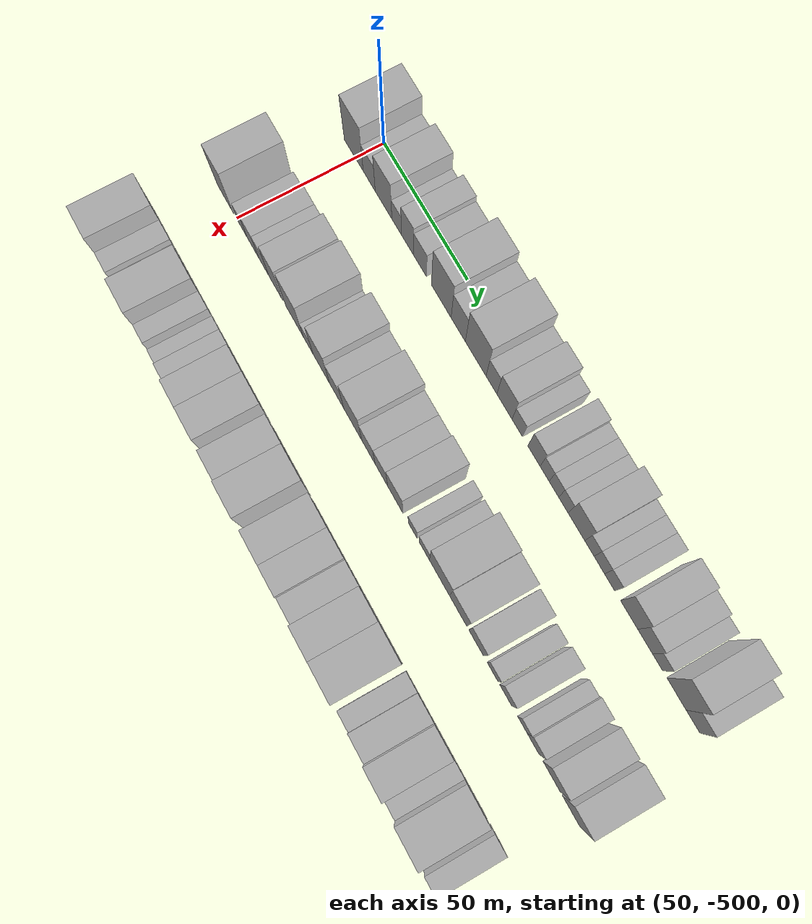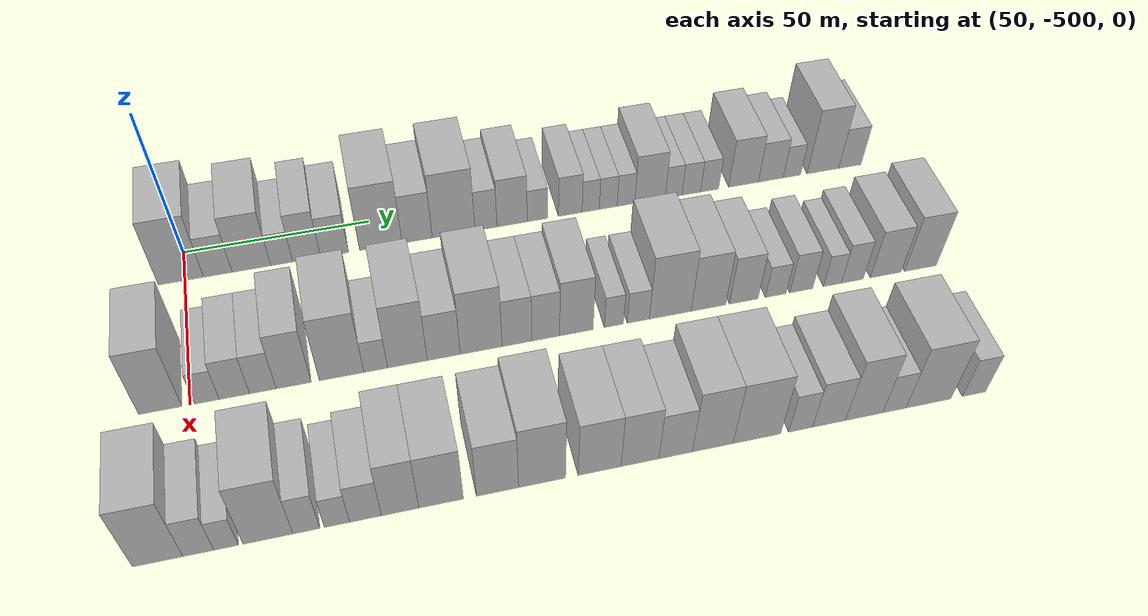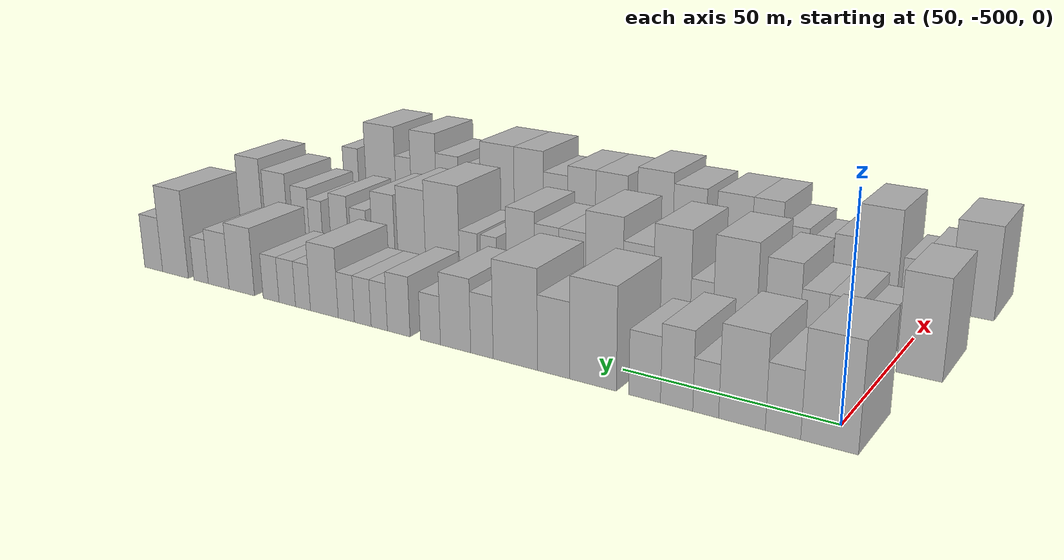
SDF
<sdf version="1.6">
 <world name="default">
  <model name="building_13">
   <static>1</static>
   <pose>50.0000 -500.9889 0 0.000000 0.000000 0.000000</pose>
   <link name="link">
    <pose>0 0 12.00 0 0 0</pose>
    <collision name="collision"><geometry><box><size>20.0000 11.7233 24.0000</size></box></geometry></collision>
    <visual name="visual">
     <cast_shadows>0</cast_shadows>
     <geometry><box><size>20.0000 11.7233 24.0000</size></box></geometry>
     <material>
      <script>
       <uri>model://HANNAS_wall/materials/scripts</uri>
       <uri>model://HANNAS_wall/materials/textures</uri>
       <name>vrc/HANNAS_wall</name>
      </script>
     </material>
    </visual>
   </link>
  </model>
  <model name="building_14">
   <static>1</static>
   <pose>50.0000 -491.3945 0 0.000000 0.000000 0.000000</pose>
   <link name="link">
    <pose>0 0 7.50 0 0 0</pose>
    <collision name="collision"><geometry><box><size>20.0000 7.4656 15.0000</size></box></geometry></collision>
    <visual name="visual">
     <cast_shadows>0</cast_shadows>
     <geometry><box><size>20.0000 7.4656 15.0000</size></box></geometry>
     <material>
      <script>
       <uri>model://HANNAS_wall/materials/scripts</uri>
       <uri>model://HANNAS_wall/materials/textures</uri>
       <name>vrc/HANNAS_wall</name>
      </script>
     </material>
    </visual>
   </link>
  </model>
  <model name="building_15">
   <static>1</static>
   <pose>50.0000 -482.5791 0 0.000000 0.000000 0.000000</pose>
   <link name="link">
    <pose>0 0 10.50 0 0 0</pose>
    <collision name="collision"><geometry><box><size>20.0000 10.1651 21.0000</size></box></geometry></collision>
    <visual name="visual">
     <cast_shadows>0</cast_shadows>
     <geometry><box><size>20.0000 10.1651 21.0000</size></box></geometry>
     <material>
      <script>
       <uri>model://HANNAS_wall/materials/scripts</uri>
       <uri>model://HANNAS_wall/materials/textures</uri>
       <name>vrc/HANNAS_wall</name>
      </script>
     </material>
    </visual>
   </link>
  </model>
  <model name="building_16">
   <static>1</static>
   <pose>50.0000 -474.5978 0 0.000000 0.000000 0.000000</pose>
   <link name="link">
    <pose>0 0 6.00 0 0 0</pose>
    <collision name="collision"><geometry><box><size>20.0000 5.7976 12.0000</size></box></geometry></collision>
    <visual name="visual">
     <cast_shadows>0</cast_shadows>
     <geometry><box><size>20.0000 5.7976 12.0000</size></box></geometry>
     <material>
      <script>
       <uri>model://HANNAS_wall/materials/scripts</uri>
       <uri>model://HANNAS_wall/materials/textures</uri>
       <name>vrc/HANNAS_wall</name>
      </script>
     </material>
    </visual>
   </link>
  </model>
  <model name="building_17">
   <static>1</static>
   <pose>50.0000 -467.9773 0 0.000000 0.000000 0.000000</pose>
   <link name="link">
    <pose>0 0 9.00 0 0 0</pose>
    <collision name="collision"><geometry><box><size>20.0000 7.4434 18.0000</size></box></geometry></collision>
    <visual name="visual">
     <cast_shadows>0</cast_shadows>
     <geometry><box><size>20.0000 7.4434 18.0000</size></box></geometry>
     <material>
      <script>
       <uri>model://HANNAS_wall/materials/scripts</uri>
       <uri>model://HANNAS_wall/materials/textures</uri>
       <name>vrc/HANNAS_wall</name>
      </script>
     </material>
    </visual>
   </link>
  </model>
  <model name="building_18">
   <static>1</static>
   <pose>50.0000 -460.5106 0 0.000000 0.000000 0.000000</pose>
   <link name="link">
    <pose>0 0 7.50 0 0 0</pose>
    <collision name="collision"><geometry><box><size>20.0000 7.4900 15.0000</size></box></geometry></collision>
    <visual name="visual">
     <cast_shadows>0</cast_shadows>
     <geometry><box><size>20.0000 7.4900 15.0000</size></box></geometry>
     <material>
      <script>
       <uri>model://HANNAS_wall/materials/scripts</uri>
       <uri>model://HANNAS_wall/materials/textures</uri>
       <name>vrc/HANNAS_wall</name>
      </script>
     </material>
    </visual>
   </link>
  </model>
  <model name="building_19">
   <static>1</static>
   <pose>50.0000 -448.0010 0 0.000000 0.000000 0.000000</pose>
   <link name="link">
    <pose>0 0 12.00 0 0 0</pose>
    <collision name="collision"><geometry><box><size>20.0000 11.5291 24.0000</size></box></geometry></collision>
    <visual name="visual">
     <cast_shadows>0</cast_shadows>
     <geometry><box><size>20.0000 11.5291 24.0000</size></box></geometry>
     <material>
      <script>
       <uri>model://HANNAS_wall/materials/scripts</uri>
       <uri>model://HANNAS_wall/materials/textures</uri>
       <name>vrc/HANNAS_wall</name>
      </script>
     </material>
    </visual>
   </link>
  </model>
  <model name="building_20">
   <static>1</static>
   <pose>50.0000 -438.1057 0 0.000000 0.000000 0.000000</pose>
   <link name="link">
    <pose>0 0 9.00 0 0 0</pose>
    <collision name="collision"><geometry><box><size>20.0000 8.2616 18.0000</size></box></geometry></collision>
    <visual name="visual">
     <cast_shadows>0</cast_shadows>
     <geometry><box><size>20.0000 8.2616 18.0000</size></box></geometry>
     <material>
      <script>
       <uri>model://HANNAS_wall/materials/scripts</uri>
       <uri>model://HANNAS_wall/materials/textures</uri>
       <name>vrc/HANNAS_wall</name>
      </script>
     </material>
    </visual>
   </link>
  </model>
  <model name="building_21">
   <static>1</static>
   <pose>50.0000 -428.0708 0 0.000000 0.000000 0.000000</pose>
   <link name="link">
    <pose>0 0 12.00 0 0 0</pose>
    <collision name="collision"><geometry><box><size>20.0000 11.8082 24.0000</size></box></geometry></collision>
    <visual name="visual">
     <cast_shadows>0</cast_shadows>
     <geometry><box><size>20.0000 11.8082 24.0000</size></box></geometry>
     <material>
      <script>
       <uri>model://HANNAS_wall/materials/scripts</uri>
       <uri>model://HANNAS_wall/materials/textures</uri>
       <name>vrc/HANNAS_wall</name>
      </script>
     </material>
    </visual>
   </link>
  </model>
  <model name="building_22">
   <static>1</static>
   <pose>50.0000 -419.0965 0 0.000000 0.000000 0.000000</pose>
   <link name="link">
    <pose>0 0 7.50 0 0 0</pose>
    <collision name="collision"><geometry><box><size>20.0000 6.1403 15.0000</size></box></geometry></collision>
    <visual name="visual">
     <cast_shadows>0</cast_shadows>
     <geometry><box><size>20.0000 6.1403 15.0000</size></box></geometry>
     <material>
      <script>
       <uri>model://HANNAS_wall/materials/scripts</uri>
       <uri>model://HANNAS_wall/materials/textures</uri>
       <name>vrc/HANNAS_wall</name>
      </script>
     </material>
    </visual>
   </link>
  </model>
  <model name="building_23">
   <static>1</static>
   <pose>50.0000 -411.7634 0 0.000000 0.000000 0.000000</pose>
   <link name="link">
    <pose>0 0 9.00 0 0 0</pose>
    <collision name="collision"><geometry><box><size>20.0000 8.5258 18.0000</size></box></geometry></collision>
    <visual name="visual">
     <cast_shadows>0</cast_shadows>
     <geometry><box><size>20.0000 8.5258 18.0000</size></box></geometry>
     <material>
      <script>
       <uri>model://HANNAS_wall/materials/scripts</uri>
       <uri>model://HANNAS_wall/materials/textures</uri>
       <name>vrc/HANNAS_wall</name>
      </script>
     </material>
    </visual>
   </link>
  </model>
  <model name="building_24">
   <static>1</static>
   <pose>50.0000 -404.6001 0 0.000000 0.000000 0.000000</pose>
   <link name="link">
    <pose>0 0 6.00 0 0 0</pose>
    <collision name="collision"><geometry><box><size>20.0000 5.8009 12.0000</size></box></geometry></collision>
    <visual name="visual">
     <cast_shadows>0</cast_shadows>
     <geometry><box><size>20.0000 5.8009 12.0000</size></box></geometry>
     <material>
      <script>
       <uri>model://HANNAS_wall/materials/scripts</uri>
       <uri>model://HANNAS_wall/materials/textures</uri>
       <name>vrc/HANNAS_wall</name>
      </script>
     </material>
    </visual>
   </link>
  </model>
  <model name="building_25">
   <static>1</static>
   <pose>50.0000 -395.3287 0 0.000000 0.000000 0.000000</pose>
   <link name="link">
    <pose>0 0 7.50 0 0 0</pose>
    <collision name="collision"><geometry><box><size>20.0000 6.7418 15.0000</size></box></geometry></collision>
    <visual name="visual">
     <cast_shadows>0</cast_shadows>
     <geometry><box><size>20.0000 6.7418 15.0000</size></box></geometry>
     <material>
      <script>
       <uri>model://HANNAS_wall/materials/scripts</uri>
       <uri>model://HANNAS_wall/materials/textures</uri>
       <name>vrc/HANNAS_wall</name>
      </script>
     </material>
    </visual>
   </link>
  </model>
  <model name="building_26">
   <static>1</static>
   <pose>50.0000 -389.5007 0 0.000000 0.000000 0.000000</pose>
   <link name="link">
    <pose>0 0 6.00 0 0 0</pose>
    <collision name="collision"><geometry><box><size>20.0000 4.9143 12.0000</size></box></geometry></collision>
    <visual name="visual">
     <cast_shadows>0</cast_shadows>
     <geometry><box><size>20.0000 4.9143 12.0000</size></box></geometry>
     <material>
      <script>
       <uri>model://HANNAS_wall/materials/scripts</uri>
       <uri>model://HANNAS_wall/materials/textures</uri>
       <name>vrc/HANNAS_wall</name>
      </script>
     </material>
    </visual>
   </link>
  </model>
  <model name="building_27">
   <static>1</static>
   <pose>50.0000 -384.4664 0 0.000000 0.000000 0.000000</pose>
   <link name="link">
    <pose>0 0 6.00 0 0 0</pose>
    <collision name="collision"><geometry><box><size>20.0000 5.1542 12.0000</size></box></geometry></collision>
    <visual name="visual">
     <cast_shadows>0</cast_shadows>
     <geometry><box><size>20.0000 5.1542 12.0000</size></box></geometry>
     <material>
      <script>
       <uri>model://HANNAS_wall/materials/scripts</uri>
       <uri>model://HANNAS_wall/materials/textures</uri>
       <name>vrc/HANNAS_wall</name>
      </script>
     </material>
    </visual>
   </link>
  </model>
  <model name="building_28">
   <static>1</static>
   <pose>50.0000 -379.3581 0 0.000000 0.000000 0.000000</pose>
   <link name="link">
    <pose>0 0 6.00 0 0 0</pose>
    <collision name="collision"><geometry><box><size>20.0000 5.0624 12.0000</size></box></geometry></collision>
    <visual name="visual">
     <cast_shadows>0</cast_shadows>
     <geometry><box><size>20.0000 5.0624 12.0000</size></box></geometry>
     <material>
      <script>
       <uri>model://HANNAS_wall/materials/scripts</uri>
       <uri>model://HANNAS_wall/materials/textures</uri>
       <name>vrc/HANNAS_wall</name>
      </script>
     </material>
    </visual>
   </link>
  </model>
  <model name="building_29">
   <static>1</static>
   <pose>50.0000 -372.3930 0 0.000000 0.000000 0.000000</pose>
   <link name="link">
    <pose>0 0 9.00 0 0 0</pose>
    <collision name="collision"><geometry><box><size>20.0000 8.8679 18.0000</size></box></geometry></collision>
    <visual name="visual">
     <cast_shadows>0</cast_shadows>
     <geometry><box><size>20.0000 8.8679 18.0000</size></box></geometry>
     <material>
      <script>
       <uri>model://HANNAS_wall/materials/scripts</uri>
       <uri>model://HANNAS_wall/materials/textures</uri>
       <name>vrc/HANNAS_wall</name>
      </script>
     </material>
    </visual>
   </link>
  </model>
  <model name="building_30">
   <static>1</static>
   <pose>50.0000 -365.5068 0 0.000000 0.000000 0.000000</pose>
   <link name="link">
    <pose>0 0 6.00 0 0 0</pose>
    <collision name="collision"><geometry><box><size>20.0000 4.9045 12.0000</size></box></geometry></collision>
    <visual name="visual">
     <cast_shadows>0</cast_shadows>
     <geometry><box><size>20.0000 4.9045 12.0000</size></box></geometry>
     <material>
      <script>
       <uri>model://HANNAS_wall/materials/scripts</uri>
       <uri>model://HANNAS_wall/materials/textures</uri>
       <name>vrc/HANNAS_wall</name>
      </script>
     </material>
    </visual>
   </link>
  </model>
  <model name="building_31">
   <static>1</static>
   <pose>50.0000 -360.3076 0 0.000000 0.000000 0.000000</pose>
   <link name="link">
    <pose>0 0 6.00 0 0 0</pose>
    <collision name="collision"><geometry><box><size>20.0000 5.4939 12.0000</size></box></geometry></collision>
    <visual name="visual">
     <cast_shadows>0</cast_shadows>
     <geometry><box><size>20.0000 5.4939 12.0000</size></box></geometry>
     <material>
      <script>
       <uri>model://HANNAS_wall/materials/scripts</uri>
       <uri>model://HANNAS_wall/materials/textures</uri>
       <name>vrc/HANNAS_wall</name>
      </script>
     </material>
    </visual>
   </link>
  </model>
  <model name="building_32">
   <static>1</static>
   <pose>50.0000 -354.8880 0 0.000000 0.000000 0.000000</pose>
   <link name="link">
    <pose>0 0 6.00 0 0 0</pose>
    <collision name="collision"><geometry><box><size>20.0000 5.3453 12.0000</size></box></geometry></collision>
    <visual name="visual">
     <cast_shadows>0</cast_shadows>
     <geometry><box><size>20.0000 5.3453 12.0000</size></box></geometry>
     <material>
      <script>
       <uri>model://HANNAS_wall/materials/scripts</uri>
       <uri>model://HANNAS_wall/materials/textures</uri>
       <name>vrc/HANNAS_wall</name>
      </script>
     </material>
    </visual>
   </link>
  </model>
  <model name="building_33">
   <static>1</static>
   <pose>50.0000 -344.8175 0 0.000000 0.000000 0.000000</pose>
   <link name="link">
    <pose>0 0 9.00 0 0 0</pose>
    <collision name="collision"><geometry><box><size>20.0000 8.7959 18.0000</size></box></geometry></collision>
    <visual name="visual">
     <cast_shadows>0</cast_shadows>
     <geometry><box><size>20.0000 8.7959 18.0000</size></box></geometry>
     <material>
      <script>
       <uri>model://HANNAS_wall/materials/scripts</uri>
       <uri>model://HANNAS_wall/materials/textures</uri>
       <name>vrc/HANNAS_wall</name>
      </script>
     </material>
    </visual>
   </link>
  </model>
  <model name="building_34">
   <static>1</static>
   <pose>50.0000 -336.6753 0 0.000000 0.000000 0.000000</pose>
   <link name="link">
    <pose>0 0 7.50 0 0 0</pose>
    <collision name="collision"><geometry><box><size>20.0000 7.4885 15.0000</size></box></geometry></collision>
    <visual name="visual">
     <cast_shadows>0</cast_shadows>
     <geometry><box><size>20.0000 7.4885 15.0000</size></box></geometry>
     <material>
      <script>
       <uri>model://HANNAS_wall/materials/scripts</uri>
       <uri>model://HANNAS_wall/materials/textures</uri>
       <name>vrc/HANNAS_wall</name>
      </script>
     </material>
    </visual>
   </link>
  </model>
  <model name="building_35">
   <static>1</static>
   <pose>50.0000 -330.3039 0 0.000000 0.000000 0.000000</pose>
   <link name="link">
    <pose>0 0 6.00 0 0 0</pose>
    <collision name="collision"><geometry><box><size>20.0000 5.2542 12.0000</size></box></geometry></collision>
    <visual name="visual">
     <cast_shadows>0</cast_shadows>
     <geometry><box><size>20.0000 5.2542 12.0000</size></box></geometry>
     <material>
      <script>
       <uri>model://HANNAS_wall/materials/scripts</uri>
       <uri>model://HANNAS_wall/materials/textures</uri>
       <name>vrc/HANNAS_wall</name>
      </script>
     </material>
    </visual>
   </link>
  </model>
  <model name="building_36">
   <static>1</static>
   <pose>50.0000 -320.8664 0 0.000000 0.000000 0.000000</pose>
   <link name="link">
    <pose>0 0 12.00 0 0 0</pose>
    <collision name="collision"><geometry><box><size>20.0000 9.6209 24.0000</size></box></geometry></collision>
    <visual name="visual">
     <cast_shadows>0</cast_shadows>
     <geometry><box><size>20.0000 9.6209 24.0000</size></box></geometry>
     <material>
      <script>
       <uri>model://HANNAS_wall/materials/scripts</uri>
       <uri>model://HANNAS_wall/materials/textures</uri>
       <name>vrc/HANNAS_wall</name>
      </script>
     </material>
    </visual>
   </link>
  </model>
  <model name="building_37">
   <static>1</static>
   <pose>50.0000 -312.6414 0 0.000000 0.000000 0.000000</pose>
   <link name="link">
    <pose>0 0 7.50 0 0 0</pose>
    <collision name="collision"><geometry><box><size>20.0000 6.8291 15.0000</size></box></geometry></collision>
    <visual name="visual">
     <cast_shadows>0</cast_shadows>
     <geometry><box><size>20.0000 6.8291 15.0000</size></box></geometry>
     <material>
      <script>
       <uri>model://HANNAS_wall/materials/scripts</uri>
       <uri>model://HANNAS_wall/materials/textures</uri>
       <name>vrc/HANNAS_wall</name>
      </script>
     </material>
    </visual>
   </link>
  </model>
  <model name="building_151">
   <static>1</static>
   <pose>90.0000 -506.9446 0 0.000000 0.000000 0.000000</pose>
   <link name="link">
    <pose>0 0 12.00 0 0 0</pose>
    <collision name="collision"><geometry><box><size>20.0000 10.2397 24.0000</size></box></geometry></collision>
    <visual name="visual">
     <cast_shadows>0</cast_shadows>
     <geometry><box><size>20.0000 10.2397 24.0000</size></box></geometry>
     <material>
      <script>
       <uri>model://HANNAS_wall/materials/scripts</uri>
       <uri>model://HANNAS_wall/materials/textures</uri>
       <name>vrc/HANNAS_wall</name>
      </script>
     </material>
    </visual>
   </link>
  </model>
  <model name="building_152">
   <static>1</static>
   <pose>90.0000 -495.8868 0 0.000000 0.000000 0.000000</pose>
   <link name="link">
    <pose>0 0 6.00 0 0 0</pose>
    <collision name="collision"><geometry><box><size>20.0000 5.8760 12.0000</size></box></geometry></collision>
    <visual name="visual">
     <cast_shadows>0</cast_shadows>
     <geometry><box><size>20.0000 5.8760 12.0000</size></box></geometry>
     <material>
      <script>
       <uri>model://HANNAS_wall/materials/scripts</uri>
       <uri>model://HANNAS_wall/materials/textures</uri>
       <name>vrc/HANNAS_wall</name>
      </script>
     </material>
    </visual>
   </link>
  </model>
  <model name="building_153">
   <static>1</static>
   <pose>90.0000 -489.3063 0 0.000000 0.000000 0.000000</pose>
   <link name="link">
    <pose>0 0 7.50 0 0 0</pose>
    <collision name="collision"><geometry><box><size>20.0000 7.2851 15.0000</size></box></geometry></collision>
    <visual name="visual">
     <cast_shadows>0</cast_shadows>
     <geometry><box><size>20.0000 7.2851 15.0000</size></box></geometry>
     <material>
      <script>
       <uri>model://HANNAS_wall/materials/scripts</uri>
       <uri>model://HANNAS_wall/materials/textures</uri>
       <name>vrc/HANNAS_wall</name>
      </script>
     </material>
    </visual>
   </link>
  </model>
  <model name="building_154">
   <static>1</static>
   <pose>90.0000 -482.4294 0 0.000000 0.000000 0.000000</pose>
   <link name="link">
    <pose>0 0 7.50 0 0 0</pose>
    <collision name="collision"><geometry><box><size>20.0000 6.4687 15.0000</size></box></geometry></collision>
    <visual name="visual">
     <cast_shadows>0</cast_shadows>
     <geometry><box><size>20.0000 6.4687 15.0000</size></box></geometry>
     <material>
      <script>
       <uri>model://HANNAS_wall/materials/scripts</uri>
       <uri>model://HANNAS_wall/materials/textures</uri>
       <name>vrc/HANNAS_wall</name>
      </script>
     </material>
    </visual>
   </link>
  </model>
  <model name="building_155">
   <static>1</static>
   <pose>90.0000 -474.9381 0 0.000000 0.000000 0.000000</pose>
   <link name="link">
    <pose>0 0 10.50 0 0 0</pose>
    <collision name="collision"><geometry><box><size>20.0000 8.5140 21.0000</size></box></geometry></collision>
    <visual name="visual">
     <cast_shadows>0</cast_shadows>
     <geometry><box><size>20.0000 8.5140 21.0000</size></box></geometry>
     <material>
      <script>
       <uri>model://HANNAS_wall/materials/scripts</uri>
       <uri>model://HANNAS_wall/materials/textures</uri>
       <name>vrc/HANNAS_wall</name>
      </script>
     </material>
    </visual>
   </link>
  </model>
  <model name="building_156">
   <static>1</static>
   <pose>90.0000 -463.1850 0 0.000000 0.000000 0.000000</pose>
   <link name="link">
    <pose>0 0 12.00 0 0 0</pose>
    <collision name="collision"><geometry><box><size>20.0000 10.9921 24.0000</size></box></geometry></collision>
    <visual name="visual">
     <cast_shadows>0</cast_shadows>
     <geometry><box><size>20.0000 10.9921 24.0000</size></box></geometry>
     <material>
      <script>
       <uri>model://HANNAS_wall/materials/scripts</uri>
       <uri>model://HANNAS_wall/materials/textures</uri>
       <name>vrc/HANNAS_wall</name>
      </script>
     </material>
    </visual>
   </link>
  </model>
  <model name="building_157">
   <static>1</static>
   <pose>90.0000 -454.7414 0 0.000000 0.000000 0.000000</pose>
   <link name="link">
    <pose>0 0 6.00 0 0 0</pose>
    <collision name="collision"><geometry><box><size>20.0000 5.8950 12.0000</size></box></geometry></collision>
    <visual name="visual">
     <cast_shadows>0</cast_shadows>
     <geometry><box><size>20.0000 5.8950 12.0000</size></box></geometry>
     <material>
      <script>
       <uri>model://HANNAS_wall/materials/scripts</uri>
       <uri>model://HANNAS_wall/materials/textures</uri>
       <name>vrc/HANNAS_wall</name>
      </script>
     </material>
    </visual>
   </link>
  </model>
  <model name="building_158">
   <static>1</static>
   <pose>90.0000 -446.8151 0 0.000000 0.000000 0.000000</pose>
   <link name="link">
    <pose>0 0 12.00 0 0 0</pose>
    <collision name="collision"><geometry><box><size>20.0000 9.9576 24.0000</size></box></geometry></collision>
    <visual name="visual">
     <cast_shadows>0</cast_shadows>
     <geometry><box><size>20.0000 9.9576 24.0000</size></box></geometry>
     <material>
      <script>
       <uri>model://HANNAS_wall/materials/scripts</uri>
       <uri>model://HANNAS_wall/materials/textures</uri>
       <name>vrc/HANNAS_wall</name>
      </script>
     </material>
    </visual>
   </link>
  </model>
  <model name="building_159">
   <static>1</static>
   <pose>90.0000 -437.6601 0 0.000000 0.000000 0.000000</pose>
   <link name="link">
    <pose>0 0 9.00 0 0 0</pose>
    <collision name="collision"><geometry><box><size>20.0000 8.3524 18.0000</size></box></geometry></collision>
    <visual name="visual">
     <cast_shadows>0</cast_shadows>
     <geometry><box><size>20.0000 8.3524 18.0000</size></box></geometry>
     <material>
      <script>
       <uri>model://HANNAS_wall/materials/scripts</uri>
       <uri>model://HANNAS_wall/materials/textures</uri>
       <name>vrc/HANNAS_wall</name>
      </script>
     </material>
    </visual>
   </link>
  </model>
  <model name="building_160">
   <static>1</static>
   <pose>90.0000 -428.1366 0 0.000000 0.000000 0.000000</pose>
   <link name="link">
    <pose>0 0 12.00 0 0 0</pose>
    <collision name="collision"><geometry><box><size>20.0000 10.6946 24.0000</size></box></geometry></collision>
    <visual name="visual">
     <cast_shadows>0</cast_shadows>
     <geometry><box><size>20.0000 10.6946 24.0000</size></box></geometry>
     <material>
      <script>
       <uri>model://HANNAS_wall/materials/scripts</uri>
       <uri>model://HANNAS_wall/materials/textures</uri>
       <name>vrc/HANNAS_wall</name>
      </script>
     </material>
    </visual>
   </link>
  </model>
  <model name="building_161">
   <static>1</static>
   <pose>90.0000 -418.9508 0 0.000000 0.000000 0.000000</pose>
   <link name="link">
    <pose>0 0 9.00 0 0 0</pose>
    <collision name="collision"><geometry><box><size>20.0000 7.6770 18.0000</size></box></geometry></collision>
    <visual name="visual">
     <cast_shadows>0</cast_shadows>
     <geometry><box><size>20.0000 7.6770 18.0000</size></box></geometry>
     <material>
      <script>
       <uri>model://HANNAS_wall/materials/scripts</uri>
       <uri>model://HANNAS_wall/materials/textures</uri>
       <name>vrc/HANNAS_wall</name>
      </script>
     </material>
    </visual>
   </link>
  </model>
  <model name="building_162">
   <static>1</static>
   <pose>90.0000 -411.5113 0 0.000000 0.000000 0.000000</pose>
   <link name="link">
    <pose>0 0 9.00 0 0 0</pose>
    <collision name="collision"><geometry><box><size>20.0000 7.2020 18.0000</size></box></geometry></collision>
    <visual name="visual">
     <cast_shadows>0</cast_shadows>
     <geometry><box><size>20.0000 7.2020 18.0000</size></box></geometry>
     <material>
      <script>
       <uri>model://HANNAS_wall/materials/scripts</uri>
       <uri>model://HANNAS_wall/materials/textures</uri>
       <name>vrc/HANNAS_wall</name>
      </script>
     </material>
    </visual>
   </link>
  </model>
  <model name="building_163">
   <static>1</static>
   <pose>90.0000 -403.5387 0 0.000000 0.000000 0.000000</pose>
   <link name="link">
    <pose>0 0 10.50 0 0 0</pose>
    <collision name="collision"><geometry><box><size>20.0000 8.7431 21.0000</size></box></geometry></collision>
    <visual name="visual">
     <cast_shadows>0</cast_shadows>
     <geometry><box><size>20.0000 8.7431 21.0000</size></box></geometry>
     <material>
      <script>
       <uri>model://HANNAS_wall/materials/scripts</uri>
       <uri>model://HANNAS_wall/materials/textures</uri>
       <name>vrc/HANNAS_wall</name>
      </script>
     </material>
    </visual>
   </link>
  </model>
  <model name="building_164">
   <static>1</static>
   <pose>90.0000 -393.6483 0 0.000000 0.000000 0.000000</pose>
   <link name="link">
    <pose>0 0 6.00 0 0 0</pose>
    <collision name="collision"><geometry><box><size>20.0000 5.0378 12.0000</size></box></geometry></collision>
    <visual name="visual">
     <cast_shadows>0</cast_shadows>
     <geometry><box><size>20.0000 5.0378 12.0000</size></box></geometry>
     <material>
      <script>
       <uri>model://HANNAS_wall/materials/scripts</uri>
       <uri>model://HANNAS_wall/materials/textures</uri>
       <name>vrc/HANNAS_wall</name>
      </script>
     </material>
    </visual>
   </link>
  </model>
  <model name="building_165">
   <static>1</static>
   <pose>90.0000 -387.2026 0 0.000000 0.000000 0.000000</pose>
   <link name="link">
    <pose>0 0 6.00 0 0 0</pose>
    <collision name="collision"><geometry><box><size>20.0000 5.8537 12.0000</size></box></geometry></collision>
    <visual name="visual">
     <cast_shadows>0</cast_shadows>
     <geometry><box><size>20.0000 5.8537 12.0000</size></box></geometry>
     <material>
      <script>
       <uri>model://HANNAS_wall/materials/scripts</uri>
       <uri>model://HANNAS_wall/materials/textures</uri>
       <name>vrc/HANNAS_wall</name>
      </script>
     </material>
    </visual>
   </link>
  </model>
  <model name="building_166">
   <static>1</static>
   <pose>90.0000 -378.6682 0 0.000000 0.000000 0.000000</pose>
   <link name="link">
    <pose>0 0 12.00 0 0 0</pose>
    <collision name="collision"><geometry><box><size>20.0000 11.2151 24.0000</size></box></geometry></collision>
    <visual name="visual">
     <cast_shadows>0</cast_shadows>
     <geometry><box><size>20.0000 11.2151 24.0000</size></box></geometry>
     <material>
      <script>
       <uri>model://HANNAS_wall/materials/scripts</uri>
       <uri>model://HANNAS_wall/materials/textures</uri>
       <name>vrc/HANNAS_wall</name>
      </script>
     </material>
    </visual>
   </link>
  </model>
  <model name="building_167">
   <static>1</static>
   <pose>90.0000 -368.3566 0 0.000000 0.000000 0.000000</pose>
   <link name="link">
    <pose>0 0 10.50 0 0 0</pose>
    <collision name="collision"><geometry><box><size>20.0000 9.4081 21.0000</size></box></geometry></collision>
    <visual name="visual">
     <cast_shadows>0</cast_shadows>
     <geometry><box><size>20.0000 9.4081 21.0000</size></box></geometry>
     <material>
      <script>
       <uri>model://HANNAS_wall/materials/scripts</uri>
       <uri>model://HANNAS_wall/materials/textures</uri>
       <name>vrc/HANNAS_wall</name>
      </script>
     </material>
    </visual>
   </link>
  </model>
  <model name="building_168">
   <static>1</static>
   <pose>90.0000 -358.7205 0 0.000000 0.000000 0.000000</pose>
   <link name="link">
    <pose>0 0 9.00 0 0 0</pose>
    <collision name="collision"><geometry><box><size>20.0000 7.8640 18.0000</size></box></geometry></collision>
    <visual name="visual">
     <cast_shadows>0</cast_shadows>
     <geometry><box><size>20.0000 7.8640 18.0000</size></box></geometry>
     <material>
      <script>
       <uri>model://HANNAS_wall/materials/scripts</uri>
       <uri>model://HANNAS_wall/materials/textures</uri>
       <name>vrc/HANNAS_wall</name>
      </script>
     </material>
    </visual>
   </link>
  </model>
  <model name="building_169">
   <static>1</static>
   <pose>90.0000 -349.9211 0 0.000000 0.000000 0.000000</pose>
   <link name="link">
    <pose>0 0 6.00 0 0 0</pose>
    <collision name="collision"><geometry><box><size>20.0000 5.7350 12.0000</size></box></geometry></collision>
    <visual name="visual">
     <cast_shadows>0</cast_shadows>
     <geometry><box><size>20.0000 5.7350 12.0000</size></box></geometry>
     <material>
      <script>
       <uri>model://HANNAS_wall/materials/scripts</uri>
       <uri>model://HANNAS_wall/materials/textures</uri>
       <name>vrc/HANNAS_wall</name>
      </script>
     </material>
    </visual>
   </link>
  </model>
  <model name="building_170">
   <static>1</static>
   <pose>90.0000 -342.8682 0 0.000000 0.000000 0.000000</pose>
   <link name="link">
    <pose>0 0 7.50 0 0 0</pose>
    <collision name="collision"><geometry><box><size>20.0000 6.3707 15.0000</size></box></geometry></collision>
    <visual name="visual">
     <cast_shadows>0</cast_shadows>
     <geometry><box><size>20.0000 6.3707 15.0000</size></box></geometry>
     <material>
      <script>
       <uri>model://HANNAS_wall/materials/scripts</uri>
       <uri>model://HANNAS_wall/materials/textures</uri>
       <name>vrc/HANNAS_wall</name>
      </script>
     </material>
    </visual>
   </link>
  </model>
  <model name="building_171">
   <static>1</static>
   <pose>90.0000 -334.1768 0 0.000000 0.000000 0.000000</pose>
   <link name="link">
    <pose>0 0 6.00 0 0 0</pose>
    <collision name="collision"><geometry><box><size>20.0000 5.0120 12.0000</size></box></geometry></collision>
    <visual name="visual">
     <cast_shadows>0</cast_shadows>
     <geometry><box><size>20.0000 5.0120 12.0000</size></box></geometry>
     <material>
      <script>
       <uri>model://HANNAS_wall/materials/scripts</uri>
       <uri>model://HANNAS_wall/materials/textures</uri>
       <name>vrc/HANNAS_wall</name>
      </script>
     </material>
    </visual>
   </link>
  </model>
  <model name="building_172">
   <static>1</static>
   <pose>90.0000 -328.5908 0 0.000000 0.000000 0.000000</pose>
   <link name="link">
    <pose>0 0 7.50 0 0 0</pose>
    <collision name="collision"><geometry><box><size>20.0000 6.1600 15.0000</size></box></geometry></collision>
    <visual name="visual">
     <cast_shadows>0</cast_shadows>
     <geometry><box><size>20.0000 6.1600 15.0000</size></box></geometry>
     <material>
      <script>
       <uri>model://HANNAS_wall/materials/scripts</uri>
       <uri>model://HANNAS_wall/materials/textures</uri>
       <name>vrc/HANNAS_wall</name>
      </script>
     </material>
    </visual>
   </link>
  </model>
  <model name="building_173">
   <static>1</static>
   <pose>90.0000 -319.1385 0 0.000000 0.000000 0.000000</pose>
   <link name="link">
    <pose>0 0 9.00 0 0 0</pose>
    <collision name="collision"><geometry><box><size>20.0000 8.7445 18.0000</size></box></geometry></collision>
    <visual name="visual">
     <cast_shadows>0</cast_shadows>
     <geometry><box><size>20.0000 8.7445 18.0000</size></box></geometry>
     <material>
      <script>
       <uri>model://HANNAS_wall/materials/scripts</uri>
       <uri>model://HANNAS_wall/materials/textures</uri>
       <name>vrc/HANNAS_wall</name>
      </script>
     </material>
    </visual>
   </link>
  </model>
  <model name="building_174">
   <static>1</static>
   <pose>90.0000 -309.2054 0 0.000000 0.000000 0.000000</pose>
   <link name="link">
    <pose>0 0 10.50 0 0 0</pose>
    <collision name="collision"><geometry><box><size>20.0000 9.1217 21.0000</size></box></geometry></collision>
    <visual name="visual">
     <cast_shadows>0</cast_shadows>
     <geometry><box><size>20.0000 9.1217 21.0000</size></box></geometry>
     <material>
      <script>
       <uri>model://HANNAS_wall/materials/scripts</uri>
       <uri>model://HANNAS_wall/materials/textures</uri>
       <name>vrc/HANNAS_wall</name>
      </script>
     </material>
    </visual>
   </link>
  </model>
  <model name="building_294">
   <static>1</static>
   <pose>130.0000 -508.1245 0 0.000000 0.000000 0.000000</pose>
   <link name="link">
    <pose>0 0 12.00 0 0 0</pose>
    <collision name="collision"><geometry><box><size>20.0000 10.8172 24.0000</size></box></geometry></collision>
    <visual name="visual">
     <cast_shadows>0</cast_shadows>
     <geometry><box><size>20.0000 10.8172 24.0000</size></box></geometry>
     <material>
      <script>
       <uri>model://HANNAS_wall/materials/scripts</uri>
       <uri>model://HANNAS_wall/materials/textures</uri>
       <name>vrc/HANNAS_wall</name>
      </script>
     </material>
    </visual>
   </link>
  </model>
  <model name="building_295">
   <static>1</static>
   <pose>130.0000 -499.3614 0 0.000000 0.000000 0.000000</pose>
   <link name="link">
    <pose>0 0 7.50 0 0 0</pose>
    <collision name="collision"><geometry><box><size>20.0000 6.7089 15.0000</size></box></geometry></collision>
    <visual name="visual">
     <cast_shadows>0</cast_shadows>
     <geometry><box><size>20.0000 6.7089 15.0000</size></box></geometry>
     <material>
      <script>
       <uri>model://HANNAS_wall/materials/scripts</uri>
       <uri>model://HANNAS_wall/materials/textures</uri>
       <name>vrc/HANNAS_wall</name>
      </script>
     </material>
    </visual>
   </link>
  </model>
  <model name="building_296">
   <static>1</static>
   <pose>130.0000 -493.3273 0 0.000000 0.000000 0.000000</pose>
   <link name="link">
    <pose>0 0 6.00 0 0 0</pose>
    <collision name="collision"><geometry><box><size>20.0000 5.3594 12.0000</size></box></geometry></collision>
    <visual name="visual">
     <cast_shadows>0</cast_shadows>
     <geometry><box><size>20.0000 5.3594 12.0000</size></box></geometry>
     <material>
      <script>
       <uri>model://HANNAS_wall/materials/scripts</uri>
       <uri>model://HANNAS_wall/materials/textures</uri>
       <name>vrc/HANNAS_wall</name>
      </script>
     </material>
    </visual>
   </link>
  </model>
  <model name="building_297">
   <static>1</static>
   <pose>130.0000 -484.1504 0 0.000000 0.000000 0.000000</pose>
   <link name="link">
    <pose>0 0 12.00 0 0 0</pose>
    <collision name="collision"><geometry><box><size>20.0000 10.9944 24.0000</size></box></geometry></collision>
    <visual name="visual">
     <cast_shadows>0</cast_shadows>
     <geometry><box><size>20.0000 10.9944 24.0000</size></box></geometry>
     <material>
      <script>
       <uri>model://HANNAS_wall/materials/scripts</uri>
       <uri>model://HANNAS_wall/materials/textures</uri>
       <name>vrc/HANNAS_wall</name>
      </script>
     </material>
    </visual>
   </link>
  </model>
  <model name="building_298">
   <static>1</static>
   <pose>130.0000 -475.6468 0 0.000000 0.000000 0.000000</pose>
   <link name="link">
    <pose>0 0 7.50 0 0 0</pose>
    <collision name="collision"><geometry><box><size>20.0000 6.0128 15.0000</size></box></geometry></collision>
    <visual name="visual">
     <cast_shadows>0</cast_shadows>
     <geometry><box><size>20.0000 6.0128 15.0000</size></box></geometry>
     <material>
      <script>
       <uri>model://HANNAS_wall/materials/scripts</uri>
       <uri>model://HANNAS_wall/materials/textures</uri>
       <name>vrc/HANNAS_wall</name>
      </script>
     </material>
    </visual>
   </link>
  </model>
  <model name="building_299">
   <static>1</static>
   <pose>130.0000 -468.8167 0 0.000000 0.000000 0.000000</pose>
   <link name="link">
    <pose>0 0 6.00 0 0 0</pose>
    <collision name="collision"><geometry><box><size>20.0000 5.6473 12.0000</size></box></geometry></collision>
    <visual name="visual">
     <cast_shadows>0</cast_shadows>
     <geometry><box><size>20.0000 5.6473 12.0000</size></box></geometry>
     <material>
      <script>
       <uri>model://HANNAS_wall/materials/scripts</uri>
       <uri>model://HANNAS_wall/materials/textures</uri>
       <name>vrc/HANNAS_wall</name>
      </script>
     </material>
    </visual>
   </link>
  </model>
  <model name="building_300">
   <static>1</static>
   <pose>130.0000 -462.3915 0 0.000000 0.000000 0.000000</pose>
   <link name="link">
    <pose>0 0 7.50 0 0 0</pose>
    <collision name="collision"><geometry><box><size>20.0000 7.2032 15.0000</size></box></geometry></collision>
    <visual name="visual">
     <cast_shadows>0</cast_shadows>
     <geometry><box><size>20.0000 7.2032 15.0000</size></box></geometry>
     <material>
      <script>
       <uri>model://HANNAS_wall/materials/scripts</uri>
       <uri>model://HANNAS_wall/materials/textures</uri>
       <name>vrc/HANNAS_wall</name>
      </script>
     </material>
    </visual>
   </link>
  </model>
  <model name="building_301">
   <static>1</static>
   <pose>130.0000 -454.5248 0 0.000000 0.000000 0.000000</pose>
   <link name="link">
    <pose>0 0 10.50 0 0 0</pose>
    <collision name="collision"><geometry><box><size>20.0000 8.5303 21.0000</size></box></geometry></collision>
    <visual name="visual">
     <cast_shadows>0</cast_shadows>
     <geometry><box><size>20.0000 8.5303 21.0000</size></box></geometry>
     <material>
      <script>
       <uri>model://HANNAS_wall/materials/scripts</uri>
       <uri>model://HANNAS_wall/materials/textures</uri>
       <name>vrc/HANNAS_wall</name>
      </script>
     </material>
    </visual>
   </link>
  </model>
  <model name="building_302">
   <static>1</static>
   <pose>130.0000 -445.1334 0 0.000000 0.000000 0.000000</pose>
   <link name="link">
    <pose>0 0 10.50 0 0 0</pose>
    <collision name="collision"><geometry><box><size>20.0000 10.2524 21.0000</size></box></geometry></collision>
    <visual name="visual">
     <cast_shadows>0</cast_shadows>
     <geometry><box><size>20.0000 10.2524 21.0000</size></box></geometry>
     <material>
      <script>
       <uri>model://HANNAS_wall/materials/scripts</uri>
       <uri>model://HANNAS_wall/materials/textures</uri>
       <name>vrc/HANNAS_wall</name>
      </script>
     </material>
    </visual>
   </link>
  </model>
  <model name="building_303">
   <static>1</static>
   <pose>130.0000 -432.0672 0 0.000000 0.000000 0.000000</pose>
   <link name="link">
    <pose>0 0 10.50 0 0 0</pose>
    <collision name="collision"><geometry><box><size>20.0000 9.8801 21.0000</size></box></geometry></collision>
    <visual name="visual">
     <cast_shadows>0</cast_shadows>
     <geometry><box><size>20.0000 9.8801 21.0000</size></box></geometry>
     <material>
      <script>
       <uri>model://HANNAS_wall/materials/scripts</uri>
       <uri>model://HANNAS_wall/materials/textures</uri>
       <name>vrc/HANNAS_wall</name>
      </script>
     </material>
    </visual>
   </link>
  </model>
  <model name="building_304">
   <static>1</static>
   <pose>130.0000 -421.6017 0 0.000000 0.000000 0.000000</pose>
   <link name="link">
    <pose>0 0 12.00 0 0 0</pose>
    <collision name="collision"><geometry><box><size>20.0000 11.0509 24.0000</size></box></geometry></collision>
    <visual name="visual">
     <cast_shadows>0</cast_shadows>
     <geometry><box><size>20.0000 11.0509 24.0000</size></box></geometry>
     <material>
      <script>
       <uri>model://HANNAS_wall/materials/scripts</uri>
       <uri>model://HANNAS_wall/materials/textures</uri>
       <name>vrc/HANNAS_wall</name>
      </script>
     </material>
    </visual>
   </link>
  </model>
  <model name="building_305">
   <static>1</static>
   <pose>130.0000 -407.9326 0 0.000000 0.000000 0.000000</pose>
   <link name="link">
    <pose>0 0 10.50 0 0 0</pose>
    <collision name="collision"><geometry><box><size>20.0000 10.2873 21.0000</size></box></geometry></collision>
    <visual name="visual">
     <cast_shadows>0</cast_shadows>
     <geometry><box><size>20.0000 10.2873 21.0000</size></box></geometry>
     <material>
      <script>
       <uri>model://HANNAS_wall/materials/scripts</uri>
       <uri>model://HANNAS_wall/materials/textures</uri>
       <name>vrc/HANNAS_wall</name>
      </script>
     </material>
    </visual>
   </link>
  </model>
  <model name="building_306">
   <static>1</static>
   <pose>130.0000 -398.2155 0 0.000000 0.000000 0.000000</pose>
   <link name="link">
    <pose>0 0 10.50 0 0 0</pose>
    <collision name="collision"><geometry><box><size>20.0000 9.1471 21.0000</size></box></geometry></collision>
    <visual name="visual">
     <cast_shadows>0</cast_shadows>
     <geometry><box><size>20.0000 9.1471 21.0000</size></box></geometry>
     <material>
      <script>
       <uri>model://HANNAS_wall/materials/scripts</uri>
       <uri>model://HANNAS_wall/materials/textures</uri>
       <name>vrc/HANNAS_wall</name>
      </script>
     </material>
    </visual>
   </link>
  </model>
  <model name="building_307">
   <static>1</static>
   <pose>130.0000 -389.5431 0 0.000000 0.000000 0.000000</pose>
   <link name="link">
    <pose>0 0 9.00 0 0 0</pose>
    <collision name="collision"><geometry><box><size>20.0000 8.1975 18.0000</size></box></geometry></collision>
    <visual name="visual">
     <cast_shadows>0</cast_shadows>
     <geometry><box><size>20.0000 8.1975 18.0000</size></box></geometry>
     <material>
      <script>
       <uri>model://HANNAS_wall/materials/scripts</uri>
       <uri>model://HANNAS_wall/materials/textures</uri>
       <name>vrc/HANNAS_wall</name>
      </script>
     </material>
    </visual>
   </link>
  </model>
  <model name="building_308">
   <static>1</static>
   <pose>130.0000 -380.4137 0 0.000000 0.000000 0.000000</pose>
   <link name="link">
    <pose>0 0 12.00 0 0 0</pose>
    <collision name="collision"><geometry><box><size>20.0000 10.0615 24.0000</size></box></geometry></collision>
    <visual name="visual">
     <cast_shadows>0</cast_shadows>
     <geometry><box><size>20.0000 10.0615 24.0000</size></box></geometry>
     <material>
      <script>
       <uri>model://HANNAS_wall/materials/scripts</uri>
       <uri>model://HANNAS_wall/materials/textures</uri>
       <name>vrc/HANNAS_wall</name>
      </script>
     </material>
    </visual>
   </link>
  </model>
  <model name="building_309">
   <static>1</static>
   <pose>130.0000 -369.4297 0 0.000000 0.000000 0.000000</pose>
   <link name="link">
    <pose>0 0 12.00 0 0 0</pose>
    <collision name="collision"><geometry><box><size>20.0000 11.9065 24.0000</size></box></geometry></collision>
    <visual name="visual">
     <cast_shadows>0</cast_shadows>
     <geometry><box><size>20.0000 11.9065 24.0000</size></box></geometry>
     <material>
      <script>
       <uri>model://HANNAS_wall/materials/scripts</uri>
       <uri>model://HANNAS_wall/materials/textures</uri>
       <name>vrc/HANNAS_wall</name>
      </script>
     </material>
    </visual>
   </link>
  </model>
  <model name="building_310">
   <static>1</static>
   <pose>130.0000 -358.4609 0 0.000000 0.000000 0.000000</pose>
   <link name="link">
    <pose>0 0 7.50 0 0 0</pose>
    <collision name="collision"><geometry><box><size>20.0000 6.0310 15.0000</size></box></geometry></collision>
    <visual name="visual">
     <cast_shadows>0</cast_shadows>
     <geometry><box><size>20.0000 6.0310 15.0000</size></box></geometry>
     <material>
      <script>
       <uri>model://HANNAS_wall/materials/scripts</uri>
       <uri>model://HANNAS_wall/materials/textures</uri>
       <name>vrc/HANNAS_wall</name>
      </script>
     </material>
    </visual>
   </link>
  </model>
  <model name="building_311">
   <static>1</static>
   <pose>130.0000 -351.2533 0 0.000000 0.000000 0.000000</pose>
   <link name="link">
    <pose>0 0 9.00 0 0 0</pose>
    <collision name="collision"><geometry><box><size>20.0000 8.3840 18.0000</size></box></geometry></collision>
    <visual name="visual">
     <cast_shadows>0</cast_shadows>
     <geometry><box><size>20.0000 8.3840 18.0000</size></box></geometry>
     <material>
      <script>
       <uri>model://HANNAS_wall/materials/scripts</uri>
       <uri>model://HANNAS_wall/materials/textures</uri>
       <name>vrc/HANNAS_wall</name>
      </script>
     </material>
    </visual>
   </link>
  </model>
  <model name="building_312">
   <static>1</static>
   <pose>130.0000 -342.2570 0 0.000000 0.000000 0.000000</pose>
   <link name="link">
    <pose>0 0 12.00 0 0 0</pose>
    <collision name="collision"><geometry><box><size>20.0000 9.6087 24.0000</size></box></geometry></collision>
    <visual name="visual">
     <cast_shadows>0</cast_shadows>
     <geometry><box><size>20.0000 9.6087 24.0000</size></box></geometry>
     <material>
      <script>
       <uri>model://HANNAS_wall/materials/scripts</uri>
       <uri>model://HANNAS_wall/materials/textures</uri>
       <name>vrc/HANNAS_wall</name>
      </script>
     </material>
    </visual>
   </link>
  </model>
  <model name="building_313">
   <static>1</static>
   <pose>130.0000 -334.4397 0 0.000000 0.000000 0.000000</pose>
   <link name="link">
    <pose>0 0 7.50 0 0 0</pose>
    <collision name="collision"><geometry><box><size>20.0000 6.0258 15.0000</size></box></geometry></collision>
    <visual name="visual">
     <cast_shadows>0</cast_shadows>
     <geometry><box><size>20.0000 6.0258 15.0000</size></box></geometry>
     <material>
      <script>
       <uri>model://HANNAS_wall/materials/scripts</uri>
       <uri>model://HANNAS_wall/materials/textures</uri>
       <name>vrc/HANNAS_wall</name>
      </script>
     </material>
    </visual>
   </link>
  </model>
  <model name="building_314">
   <static>1</static>
   <pose>130.0000 -325.5253 0 0.000000 0.000000 0.000000</pose>
   <link name="link">
    <pose>0 0 12.00 0 0 0</pose>
    <collision name="collision"><geometry><box><size>20.0000 11.8031 24.0000</size></box></geometry></collision>
    <visual name="visual">
     <cast_shadows>0</cast_shadows>
     <geometry><box><size>20.0000 11.8031 24.0000</size></box></geometry>
     <material>
      <script>
       <uri>model://HANNAS_wall/materials/scripts</uri>
       <uri>model://HANNAS_wall/materials/textures</uri>
       <name>vrc/HANNAS_wall</name>
      </script>
     </material>
    </visual>
   </link>
  </model>
  <model name="building_315">
   <static>1</static>
   <pose>130.0000 -313.5697 0 0.000000 0.000000 0.000000</pose>
   <link name="link">
    <pose>0 0 7.50 0 0 0</pose>
    <collision name="collision"><geometry><box><size>20.0000 6.1080 15.0000</size></box></geometry></collision>
    <visual name="visual">
     <cast_shadows>0</cast_shadows>
     <geometry><box><size>20.0000 6.1080 15.0000</size></box></geometry>
     <material>
      <script>
       <uri>model://HANNAS_wall/materials/scripts</uri>
       <uri>model://HANNAS_wall/materials/textures</uri>
       <name>vrc/HANNAS_wall</name>
      </script>
     </material>
    </visual>
   </link>
  </model>
 </world>
</sdf>
